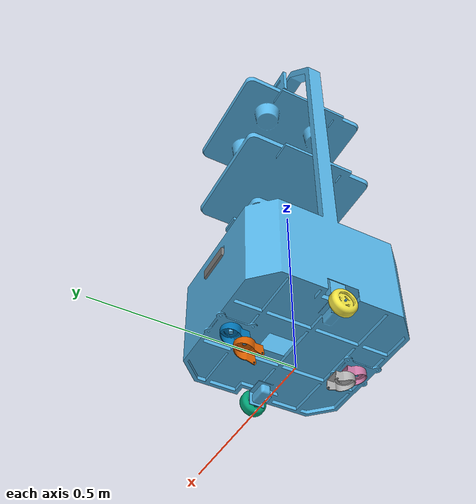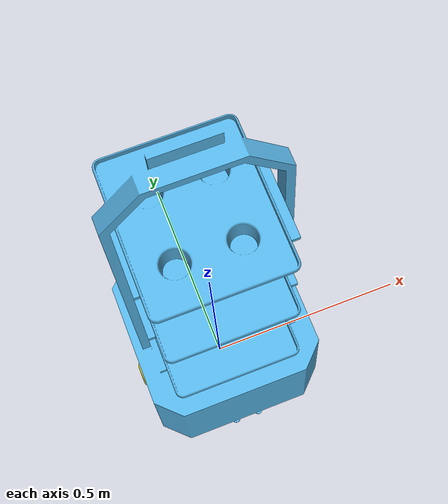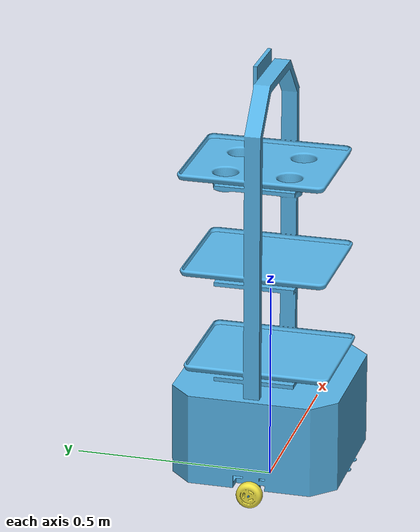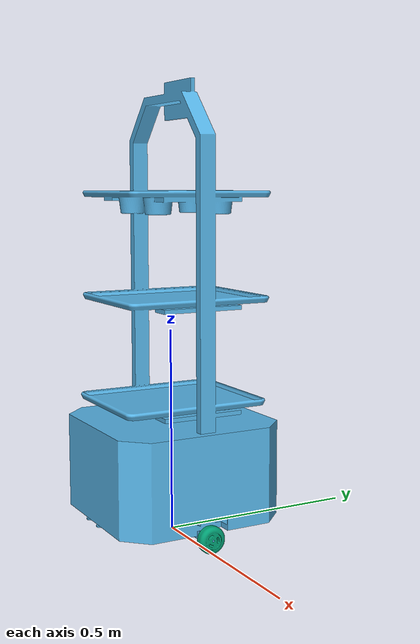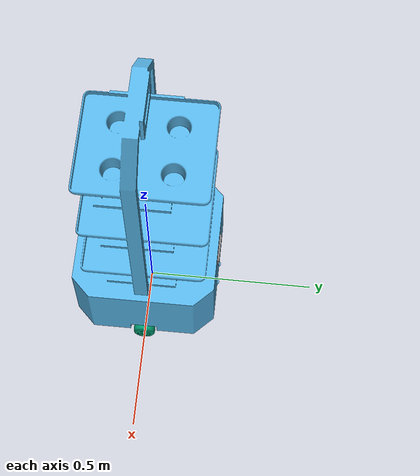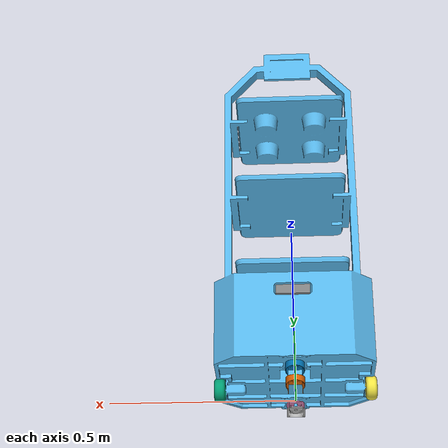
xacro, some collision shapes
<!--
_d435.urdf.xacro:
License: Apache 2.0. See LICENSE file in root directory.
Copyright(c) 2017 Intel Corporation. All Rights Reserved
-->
<?xml version="1.0"?>
<robot name="servebot" xmlns:xacro="http://ros.org/wiki/xacro">
  <xacro:include filename="$(find servebot_description)/urdf/body.urdf.xacro" />

  <xacro:arg name="use_nominal_extrinsics" default="false"/>
  <xacro:include filename="$(find servebot_description)/urdf/_d435.urdf.xacro" />

  <xacro:sensor_d435 parent="base_link" use_nominal_extrinsics="$(arg use_nominal_extrinsics)">
    <origin xyz="0 0.203 0.17" rpy="0 0 1.57"/>
  </xacro:sensor_d435>

</robot>

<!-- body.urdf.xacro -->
<robot name="body" xmlns:xacro="http://ros.org/wiki/xacro">
  <xacro:include filename="$(find servebot_description)/urdf/common_properties.urdf.xacro"/>
  <xacro:include filename="$(find servebot_description)/urdf/body_gazebo.urdf.xacro"/>

  <link name="base_footprint"/>

  <joint name="base_joint" type="fixed">
    <origin xyz="0 0 0.050" rpy="0 0 0" />
    <parent link="base_footprint"/>
    <child link="base_link" />
  </joint>

  <link name="base_link">

    <visual>
      <geometry>
        <mesh filename="package://servebot_description/meshes/base_servebot.dae" scale="0.001 0.001 0.001"/>
      </geometry>
      <origin xyz="0 0 0" rpy="0 0 0"/>
    </visual>

    <collision>
      <geometry>
        <box size="0.430 0.430 1.050"/>
      </geometry>
      <origin xyz="0 0 0.488" rpy="0 0 0"/>
    </collision>

    <inertial>
      <origin xyz="0.01 0 0"/>
      <mass value="6"/>
      <inertia ixx="0.019995" ixy="0.0" ixz="0.0"
               iyy="0.019995" iyz="0.0"
               izz="0.03675" />
    </inertial>

  </link>

  <joint name="wheel_left_joint" type="continuous">
    <parent link="base_link"/>
    <child link="wheel_left_link"/>
    <origin xyz="0.203 0 -0.0175" rpy="0 0 0"/>
    <axis xyz="1 0 0"/>
  </joint>

  <link name="wheel_left_link">
    <visual>
      <origin xyz="0 0 0" rpy="0 0 0"/>
      <geometry>
        <mesh filename="package://servebot_description/meshes/drive_wheel_servebot.dae" scale="0.001 0.001 0.001"/>
      </geometry>
    </visual>

    <collision>
      <geometry>
        <cylinder length="0.015" radius="0.03"/>
      </geometry>
      <origin xyz="0 0 0" rpy="0 ${M_PI/2} 0"/>
    </collision>

    <inertial>
      <mass value="0.01" />
      <origin xyz="0 0 0" />
      <inertia ixx="0.001" ixy="0.0" ixz="0.0"
               iyy="0.001" iyz="0.0"
               izz="0.001" />
    </inertial>

  </link>

  <joint name="wheel_right_joint" type="continuous">
    <parent link="base_link"/>
    <child link="wheel_right_link"/>
    <origin xyz="-0.203 0 -0.0175" rpy="0 0 0"/>
    <axis xyz="1 0 0"/>
  </joint>

  <link name="wheel_right_link">
    <visual>
      <origin xyz="0 0 0" rpy="0 0 0"/>
      <geometry>
        <mesh filename="package://servebot_description/meshes/drive_wheel_servebot.dae" scale="0.001 0.001 0.001"/>
      </geometry>
    </visual>

    <collision>
      <geometry>
        <cylinder length="0.015" radius="0.03"/>
      </geometry>
      <origin xyz="0 0 0" rpy="0 ${-M_PI/2} 0"/>
    </collision>

    <inertial>
      <mass value="0.01" />
      <origin xyz="0 0 0" />
      <inertia ixx="0.001" ixy="0.0" ixz="0.0"
               iyy="0.001" iyz="0.0"
               izz="0.001" />
    </inertial>
  </link>

  <joint name="caster_front_joint_1" type="continuous">
    <parent link="base_link"/>
    <child link="caster_front_link_1"/>
    <origin xyz="0 0.165 -0.003" rpy="0 0 0"/>
    <axis xyz="0 0 1"/>
  </joint>

  <link name="caster_front_link_1">
    <visual>
      <origin xyz="0 0 0" rpy="0 0 0"/>
      <geometry>
        <mesh filename="package://servebot_description/meshes/caster_wheel_1_servebot.dae" scale="0.001 0.001 0.001"/>
      </geometry>
    </visual>

    <collision>
      <geometry>
        <box size="0.050 0.064 0.033"/>
      </geometry>
      <origin xyz="0 0 0" rpy="0 0 0"/>
    </collision>

    <inertial>
      <mass value="0.005" />
      <origin xyz="0 0 0" />
      <inertia ixx="0.0005" ixy="0.0" ixz="0.0"
               iyy="0.0005" iyz="0.0"
               izz="0.0005" />
    </inertial>
  </link>

  <joint name="caster_front_joint_2" type="continuous">
    <parent link="caster_front_link_1"/>
    <child link="caster_front_link_2"/>
    <origin xyz="0 -0.03378 -0.02786" rpy="0 0 0"/>
    <axis xyz="1 0 0"/>
  </joint>

  <link name="caster_front_link_2">
    <visual>
      <origin xyz="0 0 0" rpy="0 0 0"/>
      <geometry>
        <mesh filename="package://servebot_description/meshes/caster_wheel_2_servebot.dae" scale="0.001 0.001 0.001"/>
      </geometry>
    </visual>

    <collision>
      <geometry>
        <cylinder length="0.023" radius="0.010"/>
      </geometry>
      <origin xyz="0 0 0" rpy="0 ${M_PI/2} 0"/>
    </collision>

    <inertial>
      <mass value="0.005" />
      <origin xyz="0 0 0" />
      <inertia ixx="0.0005" ixy="0.0" ixz="0.0"
               iyy="0.0005" iyz="0.0"
               izz="0.0005" />
    </inertial>
  </link>

  <joint name="caster_back_joint_1" type="continuous">
    <parent link="base_link"/>
    <child link="caster_back_link_1"/>
    <origin xyz="0 -0.165 -0.003" rpy="0 0 ${M_PI}"/>
    <axis xyz="0 0 1"/>
  </joint>

  <link name="caster_back_link_1">
    <visual>
      <origin xyz="0 0 0" rpy="0 0 0"/>
      <geometry>
        <mesh filename="package://servebot_description/meshes/caster_wheel_1_servebot.dae" scale="0.001 0.001 0.001"/>
      </geometry>
    </visual>

    <collision>
      <geometry>
        <box size="0.050 0.064 0.033"/>
      </geometry>
      <origin xyz="0 0 0" rpy="0 0 0"/>
    </collision>

    <inertial>
      <mass value="0.005" />
      <origin xyz="0 0 0" />
      <inertia ixx="0.0005" ixy="0.0" ixz="0.0"
               iyy="0.0005" iyz="0.0"
               izz="0.0005" />
    </inertial>
  </link>

  <joint name="caster_back_joint_2" type="continuous">
    <parent link="caster_back_link_1"/>
    <child link="caster_back_link_2"/>
    <origin xyz="0 -0.03378 -0.02786" rpy="0 0 0"/>
    <axis xyz="1 0 0"/>
  </joint>

  <link name="caster_back_link_2">
    <visual>
      <origin xyz="0 0 0" rpy="0 0 0"/>
      <geometry>
        <mesh filename="package://servebot_description/meshes/caster_wheel_2_servebot.dae" scale="0.001 0.001 0.001"/>
      </geometry>
    </visual>

    <collision>
      <geometry>
        <cylinder length="0.023" radius="0.010"/>
      </geometry>
      <origin xyz="0 0 0" rpy="0 ${M_PI/2} 0"/>
    </collision>

    <inertial>
      <mass value="0.005" />
      <origin xyz="0 0 0" />
      <inertia ixx="0.0005" ixy="0.0" ixz="0.0"
               iyy="0.0005" iyz="0.0"
               izz="0.0005" />
    </inertial>
  </link>

  <joint name="gyro_joint" type="fixed">
    <axis xyz="0 1 0"/>
    <origin xyz="0 0 0" rpy="0 0 0"/>
    <parent link="base_link"/>
    <child link="gyro_link"/>
  </joint>

  <link name="gyro_link">
    <inertial>
      <mass value="0.001"/>
      <origin xyz="0 0 0" rpy="0 0 0"/>
      <inertia ixx="0.0001" ixy="0" ixz="0"
               iyy="0.000001" iyz="0"
               izz="0.0001"/>
    </inertial>
  </link>

</robot>

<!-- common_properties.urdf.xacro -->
<!--
  Various useful properties such as constants and materials
 -->
<robot name="xacro_properties" xmlns:xacro="http://ros.org/wiki/xacro">
  <xacro:property name="M_PI" value="3.1415926535897931" />
  <xacro:property name="material_white">
    <material name="white">
      <color rgba="1 1 1 1"/>
    </material>
  </xacro:property>
  <xacro:property name="material_grey">
    <material name="grey">
      <color rgba="0.5 0.5 0.5 1"/>
    </material>
  </xacro:property>
  <xacro:property name="material_light_grey">
    <material name="light_grey">
      <color rgba="0.6 0.6 0.6 1"/>
    </material>
  </xacro:property>
  <xacro:property name="material_dark_grey">
    <material name="dark_grey">
      <color rgba="0.3 0.3 0.3 1"/>
    </material>
  </xacro:property>
  <xacro:property name="material_black">
    <material name="black">
      <color rgba="0.1 0.1 0.1 1"/>
    </material>
  </xacro:property>
  <xacro:property name="material_red">
    <material name="red">
      <color rgba="1 0 0 1"/>
    </material>
  </xacro:property>
  <xacro:property name="material_green">
    <material name="green">
      <color rgba="0.0 0.8 0.0 1"/>
    </material>
  </xacro:property>
  <xacro:property name="material_blue">
    <material name="blue">
      <color rgba="0.0 0.0 1.0 1"/>
    </material>
  </xacro:property>
  <xacro:property name="material_grey_blue">
    <material name="grey_blue">
      <color rgba="0.4 0.4 1.0 1"/>
    </material>
  </xacro:property>
  <xacro:property name="material_orange">
    <material name="orange">
      <color rgba="1.0 0.7 0.0 1"/>
    </material>
  </xacro:property>
</robot>

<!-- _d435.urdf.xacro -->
<robot name="sensor_d435" xmlns:xacro="http://ros.org/wiki/xacro">
  <!--File includes-->
  <xacro:include filename="$(find servebot_description)/urdf/_d435.gazebo.xacro"/>

  <xacro:macro name="sensor_d435" params="name:=camera topics_ns:=camera parent *origin use_nominal_extrinsics:=false">
    <xacro:property name="M_PI" value="3.1415926535897931" />

    <!-- The following values are approximate, and the camera node
     publishing TF values with actual calibrated camera extrinsic values -->
    <xacro:property name="d435_cam_depth_to_left_ir_offset" value="0.0"/>
    <xacro:property name="d435_cam_depth_to_right_ir_offset" value="-0.050"/>
    <xacro:property name="d435_cam_depth_to_color_offset" value="0.015"/>

    <!-- The following values model the aluminum peripherial case for the
  	D435 camera, with the camera joint represented by the actual
  	peripherial camera tripod mount -->
    <xacro:property name="d435_cam_width" value="0.090"/>
    <xacro:property name="d435_cam_height" value="0.025"/>
    <xacro:property name="d435_cam_depth" value="0.02505"/>
    <xacro:property name="d435_cam_mount_from_center_offset" value="0.0149"/>

    <!-- The following offset is relative the the physical D435 camera peripherial
  	camera tripod mount -->
    <xacro:property name="d435_cam_depth_px" value="${d435_cam_mount_from_center_offset}"/>
    <xacro:property name="d435_cam_depth_py" value="0.0175"/>
    <xacro:property name="d435_cam_depth_pz" value="${d435_cam_height/2}"/>

    <material name="${name}_aluminum">
	  <color rgba="0.5 0.5 0.5 1"/>
    </material>

    <!-- camera body, with origin at bottom screw mount -->
    <joint name="${name}_joint" type="fixed">
      <xacro:insert_block name="origin" />
      <parent link="${parent}"/>
      <child link="${name}_bottom_screw_frame" />
    </joint>
    <link name="${name}_bottom_screw_frame"/>

    <joint name="${name}_link_joint" type="fixed">
      <origin xyz="0 ${d435_cam_depth_py} ${d435_cam_depth_pz}" rpy="0 0 0"/>
      <parent link="${name}_bottom_screw_frame"/>
      <child link="${name}_link" />
    </joint>

    <link name="${name}_link">
      <visual>
      <origin xyz="${d435_cam_mount_from_center_offset} ${-d435_cam_depth_py} 0" rpy="${M_PI/2} 0 ${M_PI/2}"/>
        <geometry>
          <mesh filename="package://realsense2_description/meshes/d435.dae" />
        </geometry>
        <material name="${name}_aluminum"/>
      </visual>
      <collision>
        <origin xyz="0 ${-d435_cam_depth_py} 0" rpy="0 0 0"/>
        <geometry>
        <box size="${d435_cam_depth} ${d435_cam_width} ${d435_cam_height}"/>
        </geometry>
      </collision>
      <inertial>
        <!-- The following are not reliable values, and should not be used for modeling -->
        <mass value="0.564" />
        <origin xyz="0 0 0" />
        <inertia ixx="0.003881243" ixy="0.0" ixz="0.0" iyy="0.000498940" iyz="0.0" izz="0.003879257" />
      </inertial>
    </link>

    <!-- camera depth joints and links -->
    <joint name="${name}_depth_joint" type="fixed">
      <origin xyz="0 0 0" rpy="0 0 0"/>
      <parent link="${name}_link"/>
      <child link="${name}_depth_frame" />
    </joint>
    <link name="${name}_depth_frame"/>

    <joint name="${name}_depth_optical_joint" type="fixed">
      <origin xyz="0 0 0" rpy="${-M_PI/2} 0 ${-M_PI/2}" />
      <parent link="${name}_depth_frame" />
      <child link="${name}_depth_optical_frame" />
    </joint>
    <link name="${name}_depth_optical_frame"/>

    <!-- camera left IR joints and links -->
    <joint name="${name}_left_ir_joint" type="fixed">
      <origin xyz="0 ${d435_cam_depth_to_left_ir_offset} 0" rpy="0 0 0" />
      <parent link="${name}_depth_frame" />
      <child link="${name}_left_ir_frame" />
    </joint>
    <link name="${name}_left_ir_frame"/>

    <joint name="${name}_left_ir_optical_joint" type="fixed">
      <origin xyz="0 0 0" rpy="${-M_PI/2} 0 ${-M_PI/2}" />
      <parent link="${name}_left_ir_frame" />
      <child link="${name}_left_ir_optical_frame" />
    </joint>
    <link name="${name}_left_ir_optical_frame"/>

    <!-- camera right IR joints and links -->
    <joint name="${name}_right_ir_joint" type="fixed">
      <origin xyz="0 ${d435_cam_depth_to_right_ir_offset} 0" rpy="0 0 0" />
      <parent link="${name}_depth_frame" />
      <child link="${name}_right_ir_frame" />
    </joint>
    <link name="${name}_right_ir_frame"/>

    <joint name="${name}_right_ir_optical_joint" type="fixed">
      <origin xyz="0 0 0" rpy="${-M_PI/2} 0 ${-M_PI/2}" />
      <parent link="${name}_right_ir_frame" />
      <child link="${name}_right_ir_optical_frame" />
    </joint>
    <link name="${name}_right_ir_optical_frame"/>

    <!-- camera color joints and links -->
    <joint name="${name}_color_joint" type="fixed">
      <origin xyz="0 ${d435_cam_depth_to_color_offset} 0" rpy="0 0 0" />
      <parent link="${name}_depth_frame" />
      <child link="${name}_color_frame" />
    </joint>
    <link name="${name}_color_frame"/>

    <joint name="${name}_color_optical_joint" type="fixed">
      <origin xyz="0 0 0" rpy="${-M_PI/2} 0 ${-M_PI/2}" />
      <parent link="${name}_color_frame" />
      <child link="${name}_color_optical_frame" />
    </joint>
    <link name="${name}_color_optical_frame"/>

    <!-- Realsense Gazebo Plugin -->
    <xacro:gazebo_d435 camera_name="${name}" reference_link="${name}_link" topics_ns="${topics_ns}" depth_optical_frame="${name}_depth_optical_frame" color_optical_frame="${name}_color_optical_frame" infrared1_optical_frame="${name}_left_ir_optical_frame" infrared2_optical_frame="${name}_right_ir_optical_frame"/>

  </xacro:macro>
</robot>
